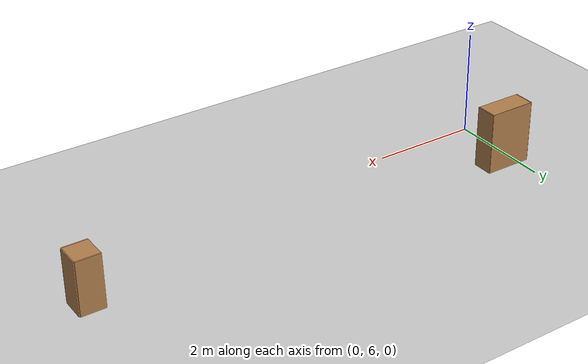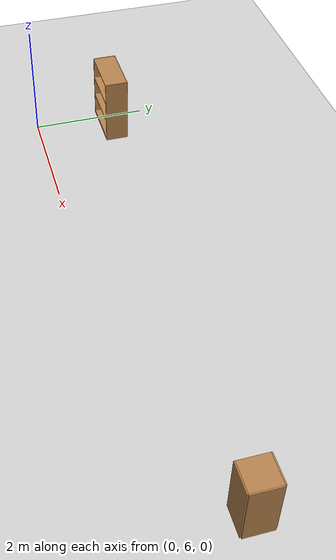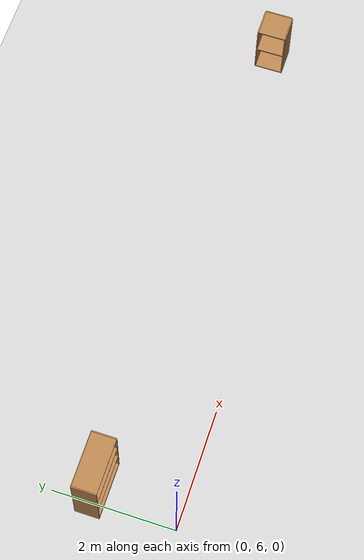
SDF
<sdf version="1.6">
 <world name="default">
  <model name="bookshelf">
   <static>1</static>
   <link name="link">
    <inertial><mass>1</mass></inertial>
    <collision name="back">
     <pose>0 0.005 0.6 0 -0 0</pose>
     <geometry><box><size>0.9 0.01 1.2</size></box></geometry>
    </collision>
    <visual name="visual1">
     <pose>0 0.005 0.6 0 -0 0</pose>
     <geometry><box><size>0.9 0.01 1.2</size></box></geometry>
     <material>
      <script><uri>file://media/materials/scripts/gazebo.material</uri><name>Gazebo/Wood</name></script>
     </material>
    </visual>
    <collision name="left_side">
     <pose>0.45 -0.195 0.6 0 -0 0</pose>
     <geometry><box><size>0.02 0.4 1.2</size></box></geometry>
    </collision>
    <visual name="visual2">
     <pose>0.45 -0.195 0.6 0 -0 0</pose>
     <geometry><box><size>0.02 0.4 1.2</size></box></geometry>
     <material>
      <script><uri>file://media/materials/scripts/gazebo.material</uri><name>Gazebo/Wood</name></script>
     </material>
    </visual>
    <collision name="right_side">
     <pose>-0.45 -0.195 0.6 0 -0 0</pose>
     <geometry><box><size>0.02 0.4 1.2</size></box></geometry>
    </collision>
    <visual name="visual3">
     <pose>-0.45 -0.195 0.6 0 -0 0</pose>
     <geometry><box><size>0.02 0.4 1.2</size></box></geometry>
     <material>
      <script><uri>file://media/materials/scripts/gazebo.material</uri><name>Gazebo/Wood</name></script>
     </material>
    </visual>
    <collision name="bottom">
     <pose>0 -0.195 0.03 0 -0 0</pose>
     <geometry><box><size>0.88 0.4 0.06</size></box></geometry>
    </collision>
    <visual name="visual4">
     <pose>0 -0.195 0.03 0 -0 0</pose>
     <geometry><box><size>0.88 0.4 0.06</size></box></geometry>
     <material>
      <script><uri>file://media/materials/scripts/gazebo.material</uri><name>Gazebo/Wood</name></script>
     </material>
    </visual>
    <collision name="top">
     <pose>0 -0.195 1.19 0 -0 0</pose>
     <geometry><box><size>0.88 0.4 0.02</size></box></geometry>
    </collision>
    <visual name="visual5">
     <pose>0 -0.195 1.19 0 -0 0</pose>
     <geometry><box><size>0.88 0.4 0.02</size></box></geometry>
     <material>
      <script><uri>file://media/materials/scripts/gazebo.material</uri><name>Gazebo/Wood</name></script>
     </material>
    </visual>
    <collision name="low_shelf">
     <pose>0 -0.195 0.43 0 -0 0</pose>
     <geometry><box><size>0.88 0.4 0.02</size></box></geometry>
    </collision>
    <visual name="visual6">
     <pose>0 -0.195 0.43 0 -0 0</pose>
     <geometry><box><size>0.88 0.4 0.02</size></box></geometry>
     <material>
      <script><uri>file://media/materials/scripts/gazebo.material</uri><name>Gazebo/Wood</name></script>
     </material>
    </visual>
    <collision name="high_shelf">
     <pose>0 -0.195 0.8 0 -0 0</pose>
     <geometry><box><size>0.88 0.4 0.02</size></box></geometry>
    </collision>
    <visual name="visual7">
     <pose>0 -0.195 0.8 0 -0 0</pose>
     <geometry><box><size>0.88 0.4 0.02</size></box></geometry>
     <material>
      <script><uri>file://media/materials/scripts/gazebo.material</uri><name>Gazebo/Wood</name></script>
     </material>
    </visual>
    <velocity_decay><linear>0</linear><angular>0</angular></velocity_decay>
   </link>
   <pose>0.265804 7.55653 0 0 -0 0</pose>
  </model>
  <model name="my_ground_plane">
   <static>1</static>
   <link name="link">
    <collision name="collision">
     <geometry><plane><normal>0 0 1</normal><size>40 40</size></plane></geometry>
     <surface><friction><ode><mu>100</mu><mu2>50</mu2></ode></friction></surface>
    </collision>
    <visual name="visual">
     <cast_shadows>0</cast_shadows>
     <geometry><plane><normal>0 0 1</normal><size>40 40</size></plane></geometry>
     <material>
      <script>
       <uri>model://my_ground_plane/materials/scripts</uri>
       <uri>model://my_ground_plane/materials/textures</uri>
       <name>MyGroundPlane/Image</name>
      </script>
     </material>
    </visual>
   </link>
   <pose>7.8727 0.914219 0 0 -0 0</pose>
  </model>
  <model name="cabinet">
   <static>1</static>
   <link name="cabinet_bottom_plate">
    <inertial>
     <pose>0 0 -1 0 -0 0</pose>
     <inertia><ixx>2.05</ixx><ixy>0</ixy><ixz>0</ixz><iyy>2.05</iyy><iyz>0</iyz><izz>2.05</izz></inertia>
     <mass>25</mass>
    </inertial>
    <collision name="cabinet_bottom_plate_geom">
     <pose>0 0 0.01 0 -0 0</pose>
     <geometry><box><size>0.45 0.45 0.02</size></box></geometry>
    </collision>
    <visual name="cabinet_bottom_plate_geom_visual">
     <pose>0 0 0.01 0 -0 0</pose>
     <geometry><box><size>0.45 0.45 0.02</size></box></geometry>
     <material>
      <script><uri>file://media/materials/scripts/gazebo.material</uri><name>Gazebo/Wood</name></script>
     </material>
    </visual>
    <collision name="cabinet_bottom_plate_geom_cabinet_back_plate">
     <pose>0.235 0 0.51 0 -0 0</pose>
     <geometry><box><size>0.02 0.45 1.02</size></box></geometry>
    </collision>
    <visual name="cabinet_bottom_plate_geom_cabinet_back_plate_visual">
     <pose>0.235 0 0.51 0 -0 0</pose>
     <geometry><box><size>0.02 0.45 1.02</size></box></geometry>
     <material>
      <script><uri>file://media/materials/scripts/gazebo.material</uri><name>Gazebo/Wood</name></script>
     </material>
    </visual>
    <collision name="cabinet_bottom_plate_geom_cabinet_left_plate">
     <pose>0 0.235 0.51 0 -0 0</pose>
     <geometry><box><size>0.45 0.02 1.02</size></box></geometry>
    </collision>
    <visual name="cabinet_bottom_plate_geom_cabinet_left_plate_visual">
     <pose>0 0.235 0.51 0 -0 0</pose>
     <geometry><box><size>0.45 0.02 1.02</size></box></geometry>
     <material>
      <script><uri>file://media/materials/scripts/gazebo.material</uri><name>Gazebo/Wood</name></script>
     </material>
    </visual>
    <collision name="cabinet_bottom_plate_geom_cabinet_middle_plate">
     <pose>0 0 0.51 0 -0 0</pose>
     <geometry><box><size>0.45 0.45 0.02</size></box></geometry>
    </collision>
    <visual name="cabinet_bottom_plate_geom_cabinet_middle_plate_visual">
     <pose>0 0 0.51 0 -0 0</pose>
     <geometry><box><size>0.45 0.45 0.02</size></box></geometry>
     <material>
      <script><uri>file://media/materials/scripts/gazebo.material</uri><name>Gazebo/Wood</name></script>
     </material>
    </visual>
    <collision name="cabinet_bottom_plate_geom_cabinet_right_plate">
     <pose>0 -0.235 0.51 0 -0 0</pose>
     <geometry><box><size>0.45 0.02 1.02</size></box></geometry>
    </collision>
    <visual name="cabinet_bottom_plate_geom_cabinet_right_plate_visual">
     <pose>0 -0.235 0.51 0 -0 0</pose>
     <geometry><box><size>0.45 0.02 1.02</size></box></geometry>
     <material>
      <script><uri>file://media/materials/scripts/gazebo.material</uri><name>Gazebo/Wood</name></script>
     </material>
    </visual>
    <collision name="cabinet_bottom_plate_geom_cabinet_top_plate">
     <pose>0 0 1.01 0 -0 0</pose>
     <geometry><box><size>0.45 0.45 0.02</size></box></geometry>
    </collision>
    <visual name="cabinet_bottom_plate_geom_cabinet_top_plate_visual">
     <pose>0 0 1.01 0 -0 0</pose>
     <geometry><box><size>0.45 0.45 0.02</size></box></geometry>
     <material>
      <script><uri>file://media/materials/scripts/gazebo.material</uri><name>Gazebo/Wood</name></script>
     </material>
    </visual>
   </link>
   <pose>8.53812 7.06274 0 0 -0 0</pose>
  </model>
 </world>
</sdf>
